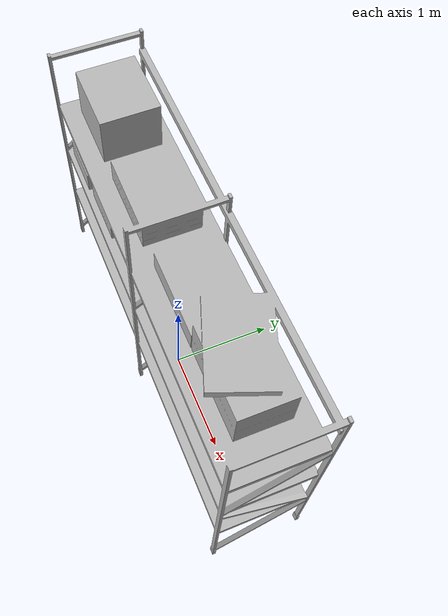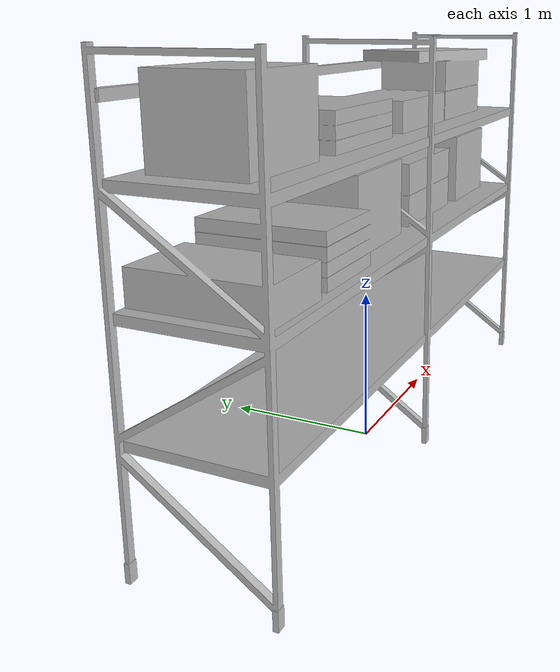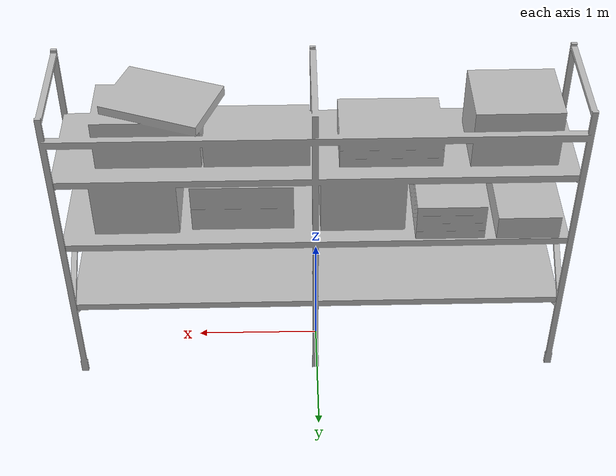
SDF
<?xml version="1.0"?>
<sdf version="1.10">
  <model name="aws_robomaker_warehouse_ShelfE_01_manipulation">
    <static>true</static>
    <link name="rack">
      <visual name="visual">
        <geometry>
          <mesh>
            <uri>file://models/aws_robomaker_warehouse_ShelfE_01/meshes/aws_robomaker_warehouse_ShelfE_01_manipulation_visual.DAE</uri>
          </mesh>
        </geometry>
      </visual>

      <!-- Open primitive collision keeps the shelf surfaces usable for
           manipulation; the original asset uses one solid collision block. -->
      <collision name="lowest_shelf">
        <pose>0 0 0.7682 0 0 0</pose>
        <geometry><box><size>3.8581 0.8330 0.0588</size></box></geometry>
        <surface><friction><ode><mu>0.8</mu><mu2>0.8</mu2></ode></friction></surface>
      </collision>
      <collision name="middle_shelf">
        <pose>0 0 1.4092 0 0 0</pose>
        <geometry><box><size>3.8581 0.8330 0.0588</size></box></geometry>
        <surface><friction><ode><mu>0.8</mu><mu2>0.8</mu2></ode></friction></surface>
      </collision>
      <collision name="upper_shelf">
        <pose>0 0 2.0287 0 0 0</pose>
        <geometry><box><size>3.8581 0.8330 0.0589</size></box></geometry>
        <surface><friction><ode><mu>0.8</mu><mu2>0.8</mu2></ode></friction></surface>
      </collision>

      <collision name="left_front_post">
        <pose>-1.931 0.417 1.306 0 0 0</pose>
        <geometry><box><size>0.056 0.032 2.613</size></box></geometry>
      </collision>
      <collision name="left_rear_post">
        <pose>-1.931 -0.424 1.306 0 0 0</pose>
        <geometry><box><size>0.056 0.032 2.613</size></box></geometry>
      </collision>
      <collision name="center_front_post">
        <pose>0.014 0.417 1.306 0 0 0</pose>
        <geometry><box><size>0.056 0.032 2.613</size></box></geometry>
      </collision>
      <collision name="center_rear_post">
        <pose>0.014 -0.424 1.306 0 0 0</pose>
        <geometry><box><size>0.056 0.032 2.613</size></box></geometry>
      </collision>
      <collision name="right_front_post">
        <pose>1.931 0.417 1.306 0 0 0</pose>
        <geometry><box><size>0.056 0.032 2.613</size></box></geometry>
      </collision>
      <collision name="right_rear_post">
        <pose>1.931 -0.424 1.306 0 0 0</pose>
        <geometry><box><size>0.056 0.032 2.613</size></box></geometry>
      </collision>
    </link>
  </model>
</sdf>
